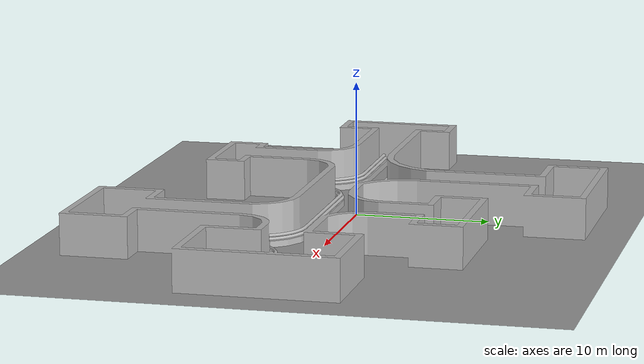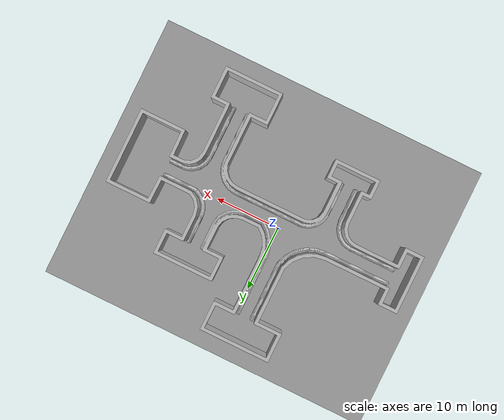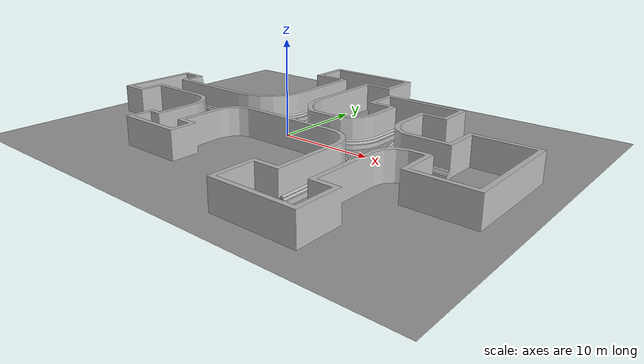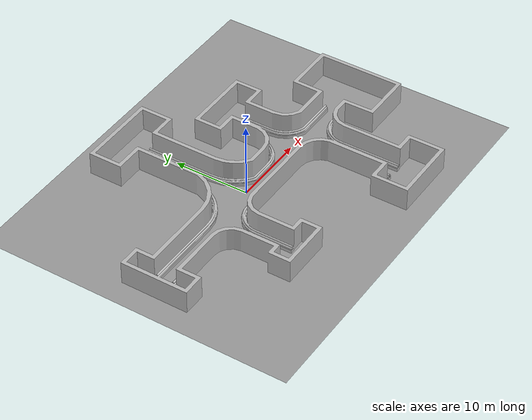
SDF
<sdf version='1.6'>
  <world name='default'>
    <light name='sun' type='directional'>
      <cast_shadows>1</cast_shadows>
      <pose>0 0 10 0 -0 0</pose>
      <diffuse>0.8 0.8 0.8 1</diffuse>
      <specular>0.2 0.2 0.2 1</specular>
      <attenuation>
        <range>1000</range>
        <constant>0.9</constant>
        <linear>0.01</linear>
        <quadratic>0.001</quadratic>
      </attenuation>
      <direction>0.5 0.1 -0.9</direction>
    </light>
    <scene>
      <ambient>0.4 0.4 0.4 1</ambient>
      <background>0.7 0.7 0.7 1</background>
      <shadows>1</shadows>
    </scene>
    <physics type='ode'>
      <max_step_size>0.01</max_step_size>
      <real_time_factor>1</real_time_factor>
      <real_time_update_rate>100</real_time_update_rate>
      <gravity>0 0 -9.8</gravity>
    </physics>

    <model name='ground_plane_0'>
      <static>1</static>
      <link name='link'>
        <collision name='collision'>
          <geometry>
            <plane>
              <normal>0 0 1</normal>
              <size>100 100</size>
            </plane>
          </geometry>
          <surface>
            <friction>
              <ode>
                <mu>100</mu>
                <mu2>50</mu2>
              </ode>
            </friction>
            <bounce/>
            <contact>
              <ode/>
            </contact>
          </surface>
          <max_contacts>10</max_contacts>
        </collision>
        <visual name='visual'>
          <cast_shadows>0</cast_shadows>
          <geometry>
            <plane>
              <normal>0 0 1</normal>
              <size>100 100</size>
            </plane>
          </geometry>
          <material>
            <script>
              <uri>file://media/materials/scripts/gazebo.material</uri>
              <name>Gazebo/Grey</name>
            </script>
          </material>
        </visual>
        <velocity_decay>
          <linear>0</linear>
          <angular>0</angular>
        </velocity_decay>
        <self_collide>0</self_collide>
        <kinematic>0</kinematic>
        <gravity>1</gravity>
      </link>
      <pose>0.497681 0 0 0 -0 0</pose>
    </model>
   <model name="myworld">
    <static>1</static>
    <link name='myworld'>
      <pose>-20 -5 0 -1.57079632679 0 0</pose>
      <inertial>
        <pose>0 0 0 0 0 0</pose>
        <mass>10000000000</mass>

      </inertial>
      <collision name='myworld_collision'>
        <pose>0 0 0 1.57079632679 -0 0</pose>
        <geometry>
          <mesh>
            <scale>1 1 1</scale>
            <uri>model://파트1.SLDPRT/meshes/파트1.SLDPRT.STL</uri>
          </mesh>
        </geometry>
        <surface>
          <friction>
            <ode>
              <mu>1000000</mu>
              <mu2>500000</mu2>
            </ode>
          </friction>
        <contact>
           <ode>
              <kp>5000000</kp>
              <kd>5000000</kd>
           </ode>
         </contact>
        </surface>
      </collision>
      <visual name='myworld_visual'>
        <pose>0 0 0 1.57079632679 -0 0</pose>
        <geometry>
          <mesh>
            <scale>1 1 1</scale>
            <uri>model://파트1.SLDPRT/meshes/파트1.SLDPRT.STL</uri>
          </mesh>
        </geometry>
      </visual>
    </link>
  </model>
</world>
</sdf>
